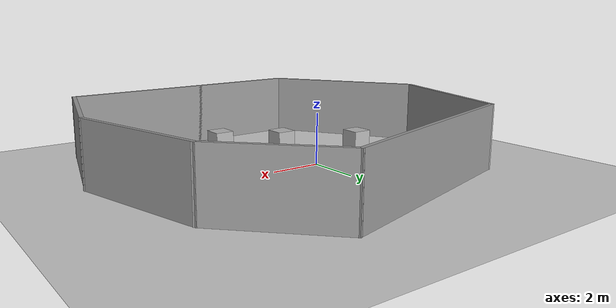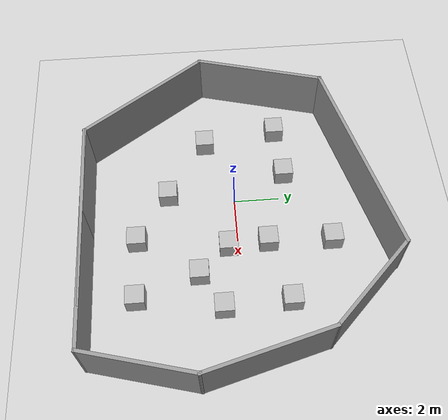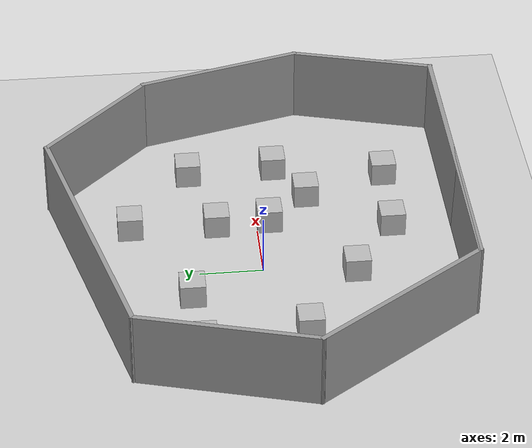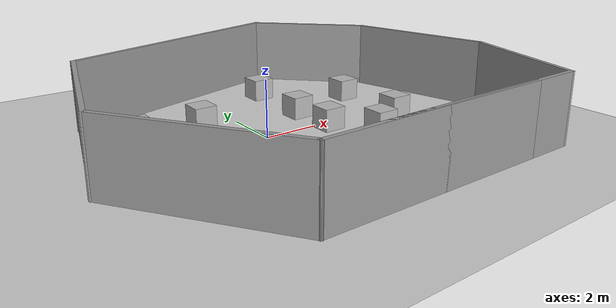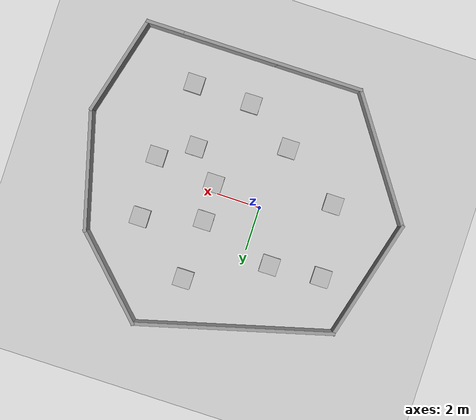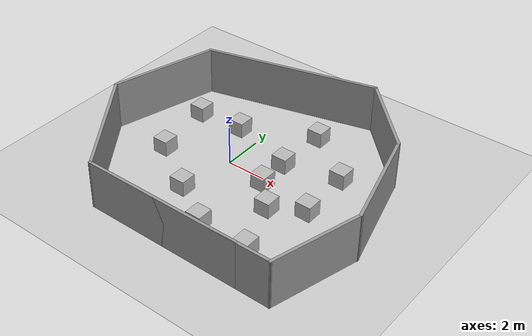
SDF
<sdf version="1.7">
 <world name="default">
  <light name="sun" type="directional">
   <pose>0 0 10 0 -0 0</pose>
   <diffuse>0.8 0.8 0.8 1</diffuse>
   <specular>0.2 0.2 0.2 1</specular>
   <attenuation>
    <range>1000</range>
    <constant>0.9</constant>
    <linear>0.01</linear>
    <quadratic>0.001</quadratic>
   </attenuation>
   <direction>-0.5 0.1 -0.9</direction>
   <spot><inner_angle>0</inner_angle><outer_angle>0</outer_angle><falloff>0</falloff></spot>
  </light>
  <model name="ground_plane">
   <static>1</static>
   <link name="link">
    <collision name="collision">
     <geometry><plane><normal>0 0 1</normal><size>100 100</size></plane></geometry>
     <surface><friction><ode><mu>100</mu><mu2>50</mu2></ode></friction></surface>
    </collision>
    <visual name="visual">
     <cast_shadows>0</cast_shadows>
     <geometry><plane><normal>0 0 1</normal><size>100 100</size></plane></geometry>
     <material>
      <script><uri>file://media/materials/scripts/gazebo.material</uri><name>Gazebo/Grey</name></script>
     </material>
    </visual>
   </link>
  </model>
  <gravity>0 0 -9.8</gravity>
  <magnetic_field>6e-06 2.3e-05 -4.2e-05</magnetic_field>
  <atmosphere type="adiabatic"/>
  <physics type="ode">
   <max_step_size>0.001</max_step_size>
   <real_time_factor>1</real_time_factor>
   <real_time_update_rate>1000</real_time_update_rate>
  </physics>
  <scene><ambient>0.4 0.4 0.4 1</ambient><background>0.7 0.7 0.7 1</background><shadows>1</shadows></scene>
  <audio><device>default</device></audio>
  <spherical_coordinates>
   <surface_model>EARTH_WGS84</surface_model>
   <latitude_deg>0</latitude_deg>
   <longitude_deg>0</longitude_deg>
   <elevation>0</elevation>
   <heading_deg>0</heading_deg>
  </spherical_coordinates>
  <model name="number1">
   <pose>2.19172 1.30135 0.4 0 -0 0</pose>
   <static>1</static>
   <link name="link">
    <visual name="visual">
     <geometry><mesh><uri>model://number1/meshes/number.dae</uri></mesh></geometry>
     <material>
      <script>
       <uri>model://number1/materials/scripts</uri>
       <uri>model://number1/materials/textures</uri>
       <name>Number/One</name>
      </script>
     </material>
    </visual>
   </link>
  </model>
  <model name="number2">
   <pose>2.28878 -0.404701 0.4 0 -0 0</pose>
   <static>1</static>
   <link name="link">
    <visual name="visual">
     <geometry><mesh><uri>model://number1/meshes/number.dae</uri></mesh></geometry>
     <material>
      <script>
       <uri>model://number2/materials/scripts</uri>
       <uri>model://number2/materials/textures</uri>
       <name>Number/Two</name>
      </script>
     </material>
    </visual>
   </link>
  </model>
  <model name="number3">
   <pose>3.52861 -1.71187 0.4 0 -0 0</pose>
   <static>1</static>
   <link name="link">
    <visual name="visual">
     <geometry><mesh><uri>model://number1/meshes/number.dae</uri></mesh></geometry>
     <material>
      <script>
       <uri>model://number3/materials/scripts</uri>
       <uri>model://number3/materials/textures</uri>
       <name>Number/Three</name>
      </script>
     </material>
    </visual>
   </link>
  </model>
  <model name="number4">
   <pose>5.08618 -0.77805 0.4 0 -0 0</pose>
   <static>1</static>
   <link name="link">
    <visual name="visual">
     <geometry><mesh><uri>model://number1/meshes/number.dae</uri></mesh></geometry>
     <material>
      <script>
       <uri>model://number4/materials/scripts</uri>
       <uri>model://number4/materials/textures</uri>
       <name>Number/Four</name>
      </script>
     </material>
    </visual>
   </link>
  </model>
  <model name="number1_0">
   <pose>-0.410026 -2.90602 0.4 0 -0 0</pose>
   <static>1</static>
   <link name="link">
    <visual name="visual">
     <geometry><mesh><uri>model://number1/meshes/number.dae</uri></mesh></geometry>
     <material>
      <script>
       <uri>model://number1/materials/scripts</uri>
       <uri>model://number1/materials/textures</uri>
       <name>Number/One</name>
      </script>
     </material>
    </visual>
   </link>
  </model>
  <model name="number1_1">
   <pose>-3.07585 -1.14591 0.4 0 -0 0</pose>
   <static>1</static>
   <link name="link">
    <visual name="visual">
     <geometry><mesh><uri>model://number1/meshes/number.dae</uri></mesh></geometry>
     <material>
      <script>
       <uri>model://number1/materials/scripts</uri>
       <uri>model://number1/materials/textures</uri>
       <name>Number/One</name>
      </script>
     </material>
    </visual>
   </link>
  </model>
  <model name="number1_2">
   <pose>-1.21052 2.30969 0.4 0 -0 0</pose>
   <static>1</static>
   <link name="link">
    <visual name="visual">
     <geometry><mesh><uri>model://number1/meshes/number.dae</uri></mesh></geometry>
     <material>
      <script>
       <uri>model://number1/materials/scripts</uri>
       <uri>model://number1/materials/textures</uri>
       <name>Number/One</name>
      </script>
     </material>
    </visual>
   </link>
  </model>
  <model name="number1_3">
   <pose>1.78299 -4.30396 0.4 0 -0 0</pose>
   <static>1</static>
   <link name="link">
    <visual name="visual">
     <geometry><mesh><uri>model://number1/meshes/number.dae</uri></mesh></geometry>
     <material>
      <script>
       <uri>model://number1/materials/scripts</uri>
       <uri>model://number1/materials/textures</uri>
       <name>Number/One</name>
      </script>
     </material>
    </visual>
   </link>
  </model>
  <model name="number7">
   <pose>2.27844 4.06606 0.4 0 -0 0</pose>
   <static>1</static>
   <link name="link">
    <visual name="visual">
     <geometry><mesh><uri>model://number1/meshes/number.dae</uri></mesh></geometry>
     <material>
      <script>
       <uri>model://number7/materials/scripts</uri>
       <uri>model://number7/materials/textures</uri>
       <name>Number/Seven</name>
      </script>
     </material>
    </visual>
   </link>
  </model>
  <model name="number6">
   <pose>4.96477 2.03305 0.4 0 -0 0</pose>
   <static>1</static>
   <link name="link">
    <visual name="visual">
     <geometry><mesh><uri>model://number1/meshes/number.dae</uri></mesh></geometry>
     <material>
      <script>
       <uri>model://number6/materials/scripts</uri>
       <uri>model://number6/materials/textures</uri>
       <name>Number/Six</name>
      </script>
     </material>
    </visual>
   </link>
  </model>
  <model name="number4_0">
   <pose>4.47359 -4.37447 0.4 0 -0 0</pose>
   <static>1</static>
   <link name="link">
    <visual name="visual">
     <geometry><mesh><uri>model://number1/meshes/number.dae</uri></mesh></geometry>
     <material>
      <script>
       <uri>model://number4/materials/scripts</uri>
       <uri>model://number4/materials/textures</uri>
       <name>Number/Four</name>
      </script>
     </material>
    </visual>
   </link>
  </model>
  <model name="number3_0">
   <pose>-3.57815 2.12126 0.4 0 -0 0</pose>
   <static>1</static>
   <link name="link">
    <visual name="visual">
     <geometry><mesh><uri>model://number1/meshes/number.dae</uri></mesh></geometry>
     <material>
      <script>
       <uri>model://number3/materials/scripts</uri>
       <uri>model://number3/materials/textures</uri>
       <name>Number/Three</name>
      </script>
     </material>
    </visual>
   </link>
  </model>
  <model name="box_course">
   <pose>1.08099 0.138844 0 0 -0 0</pose>
   <link name="Wall_20">
    <collision name="Wall_20_Collision">
     <geometry><box><size>8.25 0.15 2.5</size></box></geometry>
     <pose>0 0 1.25 0 -0 0</pose>
    </collision>
    <visual name="Wall_20_Visual">
     <pose>0 0 1.25 0 -0 0</pose>
     <geometry><box><size>8.25 0.15 2.5</size></box></geometry>
     <material>
      <script><uri>file://media/materials/scripts/gazebo.material</uri><name>Gazebo/Grey</name></script>
      <ambient>1 1 1 1</ambient>
     </material>
     <meta><layer>0</layer></meta>
    </visual>
    <pose>0.333308 -6.43266 0 0 -0 3.14159</pose>
   </link>
   <link name="Wall_21">
    <collision name="Wall_21_Collision">
     <geometry><box><size>10 0.15 2.5</size></box></geometry>
     <pose>0 0 1.25 0 -0 0</pose>
    </collision>
    <visual name="Wall_21_Visual">
     <pose>0 0 1.25 0 -0 0</pose>
     <geometry><box><size>10 0.15 2.5</size></box></geometry>
     <material>
      <script><uri>file://media/materials/scripts/gazebo.material</uri><name>Gazebo/Grey</name></script>
      <ambient>1 1 1 1</ambient>
     </material>
     <meta><layer>0</layer></meta>
    </visual>
    <pose>1.20831 -6.43266 0 0 -0 0</pose>
   </link>
   <link name="Wall_22">
    <collision name="Wall_22_Collision">
     <geometry><box><size>4.75 0.15 2.5</size></box></geometry>
     <pose>0 0 1.25 0 -0 0</pose>
    </collision>
    <visual name="Wall_22_Visual">
     <pose>0 0 1.25 0 -0 0</pose>
     <geometry><box><size>4.75 0.15 2.5</size></box></geometry>
     <material>
      <script><uri>file://media/materials/scripts/gazebo.material</uri><name>Gazebo/Grey</name></script>
      <ambient>1 1 1 1</ambient>
     </material>
     <meta><layer>0</layer></meta>
    </visual>
    <pose>6.72859 -4.21103 0 0 -0 1.309</pose>
   </link>
   <link name="Wall_23">
    <collision name="Wall_23_Collision">
     <geometry><box><size>5.5 0.15 2.5</size></box></geometry>
     <pose>0 0 1.25 0 -0 0</pose>
    </collision>
    <visual name="Wall_23_Visual">
     <pose>0 0 1.25 0 -0 0</pose>
     <geometry><box><size>5.5 0.15 2.5</size></box></geometry>
     <material>
      <script><uri>file://media/materials/scripts/gazebo.material</uri><name>Gazebo/Grey</name></script>
      <ambient>1 1 1 1</ambient>
     </material>
     <meta><layer>0</layer></meta>
    </visual>
    <pose>6.63154 0.594452 0 0 -0 1.8326</pose>
   </link>
   <link name="Wall_24">
    <collision name="Wall_24_Collision">
     <geometry><box><size>4.75 0.15 2.5</size></box></geometry>
     <pose>0 0 1.25 0 -0 0</pose>
    </collision>
    <visual name="Wall_24_Visual">
     <pose>0 0 1.25 0 -0 0</pose>
     <geometry><box><size>4.75 0.15 2.5</size></box></geometry>
     <material>
      <script><uri>file://media/materials/scripts/gazebo.material</uri><name>Gazebo/Grey</name></script>
      <ambient>1 1 1 1</ambient>
     </material>
     <meta><layer>0</layer></meta>
    </visual>
    <pose>4.31285 4.80465 0 0 -0 2.35619</pose>
   </link>
   <link name="Wall_25">
    <collision name="Wall_25_Collision">
     <geometry><box><size>9 0.15 2.5</size></box></geometry>
     <pose>0 0 1.25 0 -0 0</pose>
    </collision>
    <visual name="Wall_25_Visual">
     <pose>0 0 1.25 0 -0 0</pose>
     <geometry><box><size>9 0.15 2.5</size></box></geometry>
     <material>
      <script><uri>file://media/materials/scripts/gazebo.material</uri><name>Gazebo/Grey</name></script>
      <ambient>1 1 1 1</ambient>
     </material>
     <meta><layer>0</layer></meta>
    </visual>
    <pose>-1.58772 5.28572 0 0 -0 -2.87979</pose>
   </link>
   <link name="Wall_26">
    <collision name="Wall_26_Collision">
     <geometry><box><size>5.75 0.15 2.5</size></box></geometry>
     <pose>0 0 1.25 0 -0 0</pose>
    </collision>
    <visual name="Wall_26_Visual">
     <pose>0 0 1.25 0 -0 0</pose>
     <geometry><box><size>5.75 0.15 2.5</size></box></geometry>
     <material>
      <script><uri>file://media/materials/scripts/gazebo.material</uri><name>Gazebo/Grey</name></script>
      <ambient>1 1 1 1</ambient>
     </material>
     <meta><layer>0</layer></meta>
    </visual>
    <pose>-6.58663 1.43585 0 0 -0 -1.8326</pose>
   </link>
   <link name="Wall_27">
    <collision name="Wall_27_Collision">
     <geometry><box><size>6.44186 0.15 2.5</size></box></geometry>
     <pose>0 0 1.25 0 -0 0</pose>
    </collision>
    <visual name="Wall_27_Visual">
     <pose>0 0 1.25 0 -0 0</pose>
     <geometry><box><size>6.44186 0.15 2.5</size></box></geometry>
     <material>
      <script><uri>file://media/materials/scripts/gazebo.material</uri><name>Gazebo/Grey</name></script>
      <ambient>1 1 1 1</ambient>
     </material>
     <meta><layer>0</layer></meta>
    </visual>
    <pose>-5.51401 -3.8507 0 0 -0 -0.962689</pose>
   </link>
   <static>1</static>
  </model>
 </world>
</sdf>
